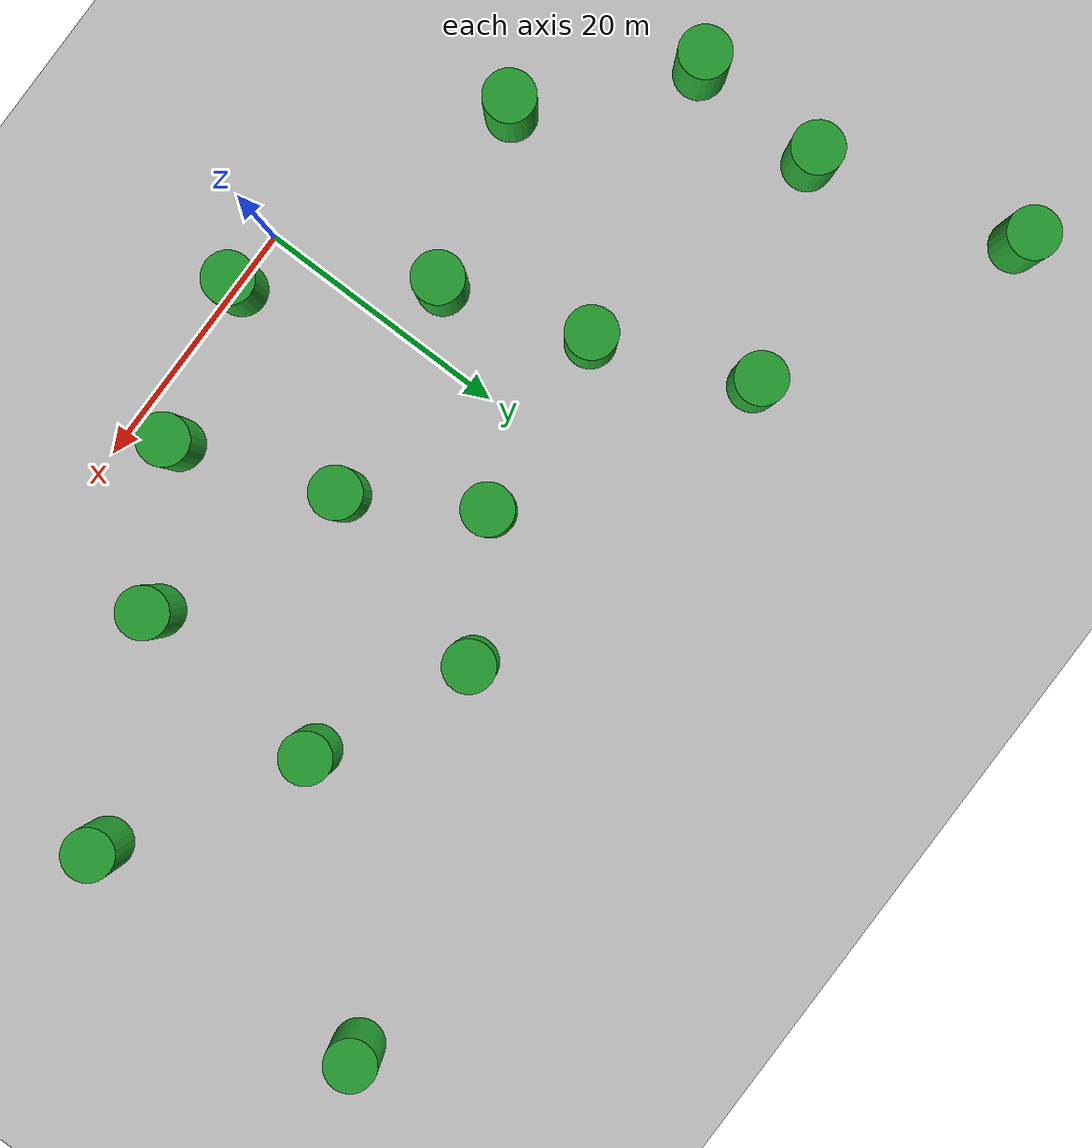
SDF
<sdf version="1.7">
 <world name="default">
  <model name="ground_plane">
   <static>1</static>
   <link name="link">
    <collision name="collision">
     <geometry><plane><normal>0 0 1</normal><size>100 100</size></plane></geometry>
     <surface>
      <contact><collide_bitmask>65535</collide_bitmask></contact>
      <friction><ode><mu>100</mu><mu2>50</mu2></ode></friction>
     </surface>
    </collision>
    <visual name="visual">
     <cast_shadows>0</cast_shadows>
     <geometry><plane><normal>0 0 1</normal><size>100 100</size></plane></geometry>
     <material>
      <script><uri>file://media/materials/scripts/gazebo.material</uri><name>Gazebo/Grey</name></script>
     </material>
    </visual>
   </link>
  </model>
  <model name="unit_cylinder_green_2_clone_1">
   <link name="link">
    <inertial>
     <mass>1</mass>
     <inertia><ixx>0.145833</ixx><ixy>0</ixy><ixz>0</ixz><iyy>0.145833</iyy><iyz>0</iyz><izz>0.125</izz></inertia>
    </inertial>
    <visual name="visual">
     <geometry><cylinder><radius>2</radius><length>10</length></cylinder></geometry>
     <material>
      <script><name>Gazebo/Green</name><uri>file://media/materials/scripts/gazebo.material</uri></script>
      <shader type="pixel"><normal_map>__default__</normal_map></shader>
      <ambient>0 1 0.3 1</ambient>
      <diffuse>0.7 0.7 0.7 1</diffuse>
      <specular>0.01 0.01 0.01 1</specular>
      <emissive>0 0 0 1</emissive>
     </material>
    </visual>
    <collision name="collision">
     <geometry><cylinder><radius>2</radius><length>5</length></cylinder></geometry>
     <surface>
      <friction>
       <ode><mu>1</mu><mu2>1</mu2><fdir1>0 0 0</fdir1><slip1>0</slip1><slip2>0</slip2></ode>
       <torsional>
        <coefficient>1</coefficient>
        <patch_radius>0</patch_radius>
        <surface_radius>0</surface_radius>
        <use_patch_radius>1</use_patch_radius>
        <ode><slip>0</slip></ode>
       </torsional>
      </friction>
      <bounce><restitution_coefficient>0</restitution_coefficient><threshold>1e+06</threshold></bounce>
      <contact>
       <collide_without_contact>0</collide_without_contact>
       <collide_without_contact_bitmask>1</collide_without_contact_bitmask>
       <collide_bitmask>1</collide_bitmask>
       <ode>
        <soft_cfm>0</soft_cfm>
        <soft_erp>0.2</soft_erp>
        <kp>1e+13</kp>
        <kd>1</kd>
        <max_vel>0.01</max_vel>
        <min_depth>0</min_depth>
       </ode>
       <bullet>
        <split_impulse>1</split_impulse>
        <split_impulse_penetration_threshold>-0.01</split_impulse_penetration_threshold>
        <soft_cfm>0</soft_cfm>
        <soft_erp>0.2</soft_erp>
        <kp>1e+13</kp>
        <kd>1</kd>
       </bullet>
      </contact>
     </surface>
    </collision>
   </link>
   <static>0</static>
   <pose>-17.8627 8.62007 2.49999 0 0 -0.000968</pose>
  </model>
  <model name="unit_cylinder_green_2_clone_clone_2">
   <link name="link">
    <inertial>
     <mass>1</mass>
     <inertia><ixx>0.145833</ixx><ixy>0</ixy><ixz>0</ixz><iyy>0.145833</iyy><iyz>0</iyz><izz>0.125</izz></inertia>
    </inertial>
    <visual name="visual">
     <geometry><cylinder><radius>2</radius><length>10</length></cylinder></geometry>
     <material>
      <script><name>Gazebo/Green</name><uri>file://media/materials/scripts/gazebo.material</uri></script>
      <shader type="pixel"><normal_map>__default__</normal_map></shader>
      <ambient>0 1 0.3 1</ambient>
      <diffuse>0.7 0.7 0.7 1</diffuse>
      <specular>0.01 0.01 0.01 1</specular>
      <emissive>0 0 0 1</emissive>
     </material>
    </visual>
    <collision name="collision">
     <geometry><cylinder><radius>2</radius><length>5</length></cylinder></geometry>
     <surface>
      <friction>
       <ode><mu>1</mu><mu2>1</mu2><fdir1>0 0 0</fdir1><slip1>0</slip1><slip2>0</slip2></ode>
       <torsional>
        <coefficient>1</coefficient>
        <patch_radius>0</patch_radius>
        <surface_radius>0</surface_radius>
        <use_patch_radius>1</use_patch_radius>
        <ode><slip>0</slip></ode>
       </torsional>
      </friction>
      <bounce><restitution_coefficient>0</restitution_coefficient><threshold>1e+06</threshold></bounce>
      <contact>
       <collide_without_contact>0</collide_without_contact>
       <collide_without_contact_bitmask>1</collide_without_contact_bitmask>
       <collide_bitmask>1</collide_bitmask>
       <ode>
        <soft_cfm>0</soft_cfm>
        <soft_erp>0.2</soft_erp>
        <kp>1e+13</kp>
        <kd>1</kd>
        <max_vel>0.01</max_vel>
        <min_depth>0</min_depth>
       </ode>
       <bullet>
        <split_impulse>1</split_impulse>
        <split_impulse_penetration_threshold>-0.01</split_impulse_penetration_threshold>
        <soft_cfm>0</soft_cfm>
        <soft_erp>0.2</soft_erp>
        <kp>1e+13</kp>
        <kd>1</kd>
       </bullet>
      </contact>
     </surface>
    </collision>
   </link>
   <static>0</static>
   <pose>-4.45496 12.3058 2.49999 0 0 -0.000967</pose>
  </model>
  <model name="unit_cylinder_green_2_clone_clone_3">
   <link name="link">
    <inertial>
     <mass>1</mass>
     <inertia><ixx>0.145833</ixx><ixy>0</ixy><ixz>0</ixz><iyy>0.145833</iyy><iyz>0</iyz><izz>0.125</izz></inertia>
    </inertial>
    <visual name="visual">
     <geometry><cylinder><radius>2</radius><length>10</length></cylinder></geometry>
     <material>
      <script><name>Gazebo/Green</name><uri>file://media/materials/scripts/gazebo.material</uri></script>
      <shader type="pixel"><normal_map>__default__</normal_map></shader>
      <ambient>0 1 0.3 1</ambient>
      <diffuse>0.7 0.7 0.7 1</diffuse>
      <specular>0.01 0.01 0.01 1</specular>
      <emissive>0 0 0 1</emissive>
     </material>
    </visual>
    <collision name="collision">
     <geometry><cylinder><radius>2</radius><length>5</length></cylinder></geometry>
     <surface>
      <friction>
       <ode><mu>1</mu><mu2>1</mu2><fdir1>0 0 0</fdir1><slip1>0</slip1><slip2>0</slip2></ode>
       <torsional>
        <coefficient>1</coefficient>
        <patch_radius>0</patch_radius>
        <surface_radius>0</surface_radius>
        <use_patch_radius>1</use_patch_radius>
        <ode><slip>0</slip></ode>
       </torsional>
      </friction>
      <bounce><restitution_coefficient>0</restitution_coefficient><threshold>1e+06</threshold></bounce>
      <contact>
       <collide_without_contact>0</collide_without_contact>
       <collide_without_contact_bitmask>1</collide_without_contact_bitmask>
       <collide_bitmask>1</collide_bitmask>
       <ode>
        <soft_cfm>0</soft_cfm>
        <soft_erp>0.2</soft_erp>
        <kp>1e+13</kp>
        <kd>1</kd>
        <max_vel>0.01</max_vel>
        <min_depth>0</min_depth>
       </ode>
       <bullet>
        <split_impulse>1</split_impulse>
        <split_impulse_penetration_threshold>-0.01</split_impulse_penetration_threshold>
        <soft_cfm>0</soft_cfm>
        <soft_erp>0.2</soft_erp>
        <kp>1e+13</kp>
        <kd>1</kd>
       </bullet>
      </contact>
     </surface>
    </collision>
   </link>
   <static>0</static>
   <pose>4.54748 0.366271 2.49999 0 0 -0.000967</pose>
  </model>
  <model name="unit_cylinder_green_2_clone_clone_8">
   <link name="link">
    <inertial>
     <mass>1</mass>
     <inertia><ixx>0.145833</ixx><ixy>0</ixy><ixz>0</ixz><iyy>0.145833</iyy><iyz>0</iyz><izz>0.125</izz></inertia>
    </inertial>
    <visual name="visual">
     <geometry><cylinder><radius>2</radius><length>10</length></cylinder></geometry>
     <material>
      <script><name>Gazebo/Green</name><uri>file://media/materials/scripts/gazebo.material</uri></script>
      <shader type="pixel"><normal_map>__default__</normal_map></shader>
      <ambient>0 1 0.3 1</ambient>
      <diffuse>0.7 0.7 0.7 1</diffuse>
      <specular>0.01 0.01 0.01 1</specular>
      <emissive>0 0 0 1</emissive>
     </material>
    </visual>
    <collision name="collision">
     <geometry><cylinder><radius>2</radius><length>5</length></cylinder></geometry>
     <surface>
      <friction>
       <ode><mu>1</mu><mu2>1</mu2><fdir1>0 0 0</fdir1><slip1>0</slip1><slip2>0</slip2></ode>
       <torsional>
        <coefficient>1</coefficient>
        <patch_radius>0</patch_radius>
        <surface_radius>0</surface_radius>
        <use_patch_radius>1</use_patch_radius>
        <ode><slip>0</slip></ode>
       </torsional>
      </friction>
      <bounce><restitution_coefficient>0</restitution_coefficient><threshold>1e+06</threshold></bounce>
      <contact>
       <collide_without_contact>0</collide_without_contact>
       <collide_without_contact_bitmask>1</collide_without_contact_bitmask>
       <collide_bitmask>1</collide_bitmask>
       <ode>
        <soft_cfm>0</soft_cfm>
        <soft_erp>0.2</soft_erp>
        <kp>1e+13</kp>
        <kd>1</kd>
        <max_vel>0.01</max_vel>
        <min_depth>0</min_depth>
       </ode>
       <bullet>
        <split_impulse>1</split_impulse>
        <split_impulse_penetration_threshold>-0.01</split_impulse_penetration_threshold>
        <soft_cfm>0</soft_cfm>
        <soft_erp>0.2</soft_erp>
        <kp>1e+13</kp>
        <kd>1</kd>
       </bullet>
      </contact>
     </surface>
    </collision>
   </link>
   <static>0</static>
   <pose>-28.7386 17.9151 2.49999 0 0 -0.000967</pose>
  </model>
  <model name="unit_cylinder_green_2_clone_clone_9">
   <link name="link">
    <inertial>
     <mass>1</mass>
     <inertia><ixx>0.145833</ixx><ixy>0</ixy><ixz>0</ixz><iyy>0.145833</iyy><iyz>0</iyz><izz>0.125</izz></inertia>
    </inertial>
    <visual name="visual">
     <geometry><cylinder><radius>2</radius><length>10</length></cylinder></geometry>
     <material>
      <script><name>Gazebo/Green</name><uri>file://media/materials/scripts/gazebo.material</uri></script>
      <shader type="pixel"><normal_map>__default__</normal_map></shader>
      <ambient>0 1 0.3 1</ambient>
      <diffuse>0.7 0.7 0.7 1</diffuse>
      <specular>0.01 0.01 0.01 1</specular>
      <emissive>0 0 0 1</emissive>
     </material>
    </visual>
    <collision name="collision">
     <geometry><cylinder><radius>2</radius><length>5</length></cylinder></geometry>
     <surface>
      <friction>
       <ode><mu>1</mu><mu2>1</mu2><fdir1>0 0 0</fdir1><slip1>0</slip1><slip2>0</slip2></ode>
       <torsional>
        <coefficient>1</coefficient>
        <patch_radius>0</patch_radius>
        <surface_radius>0</surface_radius>
        <use_patch_radius>1</use_patch_radius>
        <ode><slip>0</slip></ode>
       </torsional>
      </friction>
      <bounce><restitution_coefficient>0</restitution_coefficient><threshold>1e+06</threshold></bounce>
      <contact>
       <collide_without_contact>0</collide_without_contact>
       <collide_without_contact_bitmask>1</collide_without_contact_bitmask>
       <collide_bitmask>1</collide_bitmask>
       <ode>
        <soft_cfm>0</soft_cfm>
        <soft_erp>0.2</soft_erp>
        <kp>1e+13</kp>
        <kd>1</kd>
        <max_vel>0.01</max_vel>
        <min_depth>0</min_depth>
       </ode>
       <bullet>
        <split_impulse>1</split_impulse>
        <split_impulse_penetration_threshold>-0.01</split_impulse_penetration_threshold>
        <soft_cfm>0</soft_cfm>
        <soft_erp>0.2</soft_erp>
        <kp>1e+13</kp>
        <kd>1</kd>
       </bullet>
      </contact>
     </surface>
    </collision>
   </link>
   <static>0</static>
   <pose>-12.5558 35.0798 2.49999 0 0 -0.000967</pose>
  </model>
  <model name="unit_cylinder_green_2_clone_clone_10">
   <link name="link">
    <inertial>
     <mass>1</mass>
     <inertia><ixx>0.145833</ixx><ixy>0</ixy><ixz>0</ixz><iyy>0.145833</iyy><iyz>0</iyz><izz>0.125</izz></inertia>
    </inertial>
    <visual name="visual">
     <geometry><cylinder><radius>2</radius><length>10</length></cylinder></geometry>
     <material>
      <script><name>Gazebo/Green</name><uri>file://media/materials/scripts/gazebo.material</uri></script>
      <shader type="pixel"><normal_map>__default__</normal_map></shader>
      <ambient>0 1 0.3 1</ambient>
      <diffuse>0.7 0.7 0.7 1</diffuse>
      <specular>0.01 0.01 0.01 1</specular>
      <emissive>0 0 0 1</emissive>
     </material>
    </visual>
    <collision name="collision">
     <geometry><cylinder><radius>2</radius><length>5</length></cylinder></geometry>
     <surface>
      <friction>
       <ode><mu>1</mu><mu2>1</mu2><fdir1>0 0 0</fdir1><slip1>0</slip1><slip2>0</slip2></ode>
       <torsional>
        <coefficient>1</coefficient>
        <patch_radius>0</patch_radius>
        <surface_radius>0</surface_radius>
        <use_patch_radius>1</use_patch_radius>
        <ode><slip>0</slip></ode>
       </torsional>
      </friction>
      <bounce><restitution_coefficient>0</restitution_coefficient><threshold>1e+06</threshold></bounce>
      <contact>
       <collide_without_contact>0</collide_without_contact>
       <collide_without_contact_bitmask>1</collide_without_contact_bitmask>
       <collide_bitmask>1</collide_bitmask>
       <ode>
        <soft_cfm>0</soft_cfm>
        <soft_erp>0.2</soft_erp>
        <kp>1e+13</kp>
        <kd>1</kd>
        <max_vel>0.01</max_vel>
        <min_depth>0</min_depth>
       </ode>
       <bullet>
        <split_impulse>1</split_impulse>
        <split_impulse_penetration_threshold>-0.01</split_impulse_penetration_threshold>
        <soft_cfm>0</soft_cfm>
        <soft_erp>0.2</soft_erp>
        <kp>1e+13</kp>
        <kd>1</kd>
       </bullet>
      </contact>
     </surface>
    </collision>
   </link>
   <static>0</static>
   <pose>-7.89767 23.435 2.49999 0 0 -0.000967</pose>
  </model>
  <model name="unit_cylinder_green_2_clone_clone_11">
   <link name="link">
    <inertial>
     <mass>1</mass>
     <inertia><ixx>0.145833</ixx><ixy>0</ixy><ixz>0</ixz><iyy>0.145833</iyy><iyz>0</iyz><izz>0.125</izz></inertia>
    </inertial>
    <visual name="visual">
     <geometry><cylinder><radius>2</radius><length>10</length></cylinder></geometry>
     <material>
      <script><name>Gazebo/Green</name><uri>file://media/materials/scripts/gazebo.material</uri></script>
      <shader type="pixel"><normal_map>__default__</normal_map></shader>
      <ambient>0 1 0.3 1</ambient>
      <diffuse>0.7 0.7 0.7 1</diffuse>
      <specular>0.01 0.01 0.01 1</specular>
      <emissive>0 0 0 1</emissive>
     </material>
    </visual>
    <collision name="collision">
     <geometry><cylinder><radius>2</radius><length>5</length></cylinder></geometry>
     <surface>
      <friction>
       <ode><mu>1</mu><mu2>1</mu2><fdir1>0 0 0</fdir1><slip1>0</slip1><slip2>0</slip2></ode>
       <torsional>
        <coefficient>1</coefficient>
        <patch_radius>0</patch_radius>
        <surface_radius>0</surface_radius>
        <use_patch_radius>1</use_patch_radius>
        <ode><slip>0</slip></ode>
       </torsional>
      </friction>
      <bounce><restitution_coefficient>0</restitution_coefficient><threshold>1e+06</threshold></bounce>
      <contact>
       <collide_without_contact>0</collide_without_contact>
       <collide_without_contact_bitmask>1</collide_without_contact_bitmask>
       <collide_bitmask>1</collide_bitmask>
       <ode>
        <soft_cfm>0</soft_cfm>
        <soft_erp>0.2</soft_erp>
        <kp>1e+13</kp>
        <kd>1</kd>
        <max_vel>0.01</max_vel>
        <min_depth>0</min_depth>
       </ode>
       <bullet>
        <split_impulse>1</split_impulse>
        <split_impulse_penetration_threshold>-0.01</split_impulse_penetration_threshold>
        <soft_cfm>0</soft_cfm>
        <soft_erp>0.2</soft_erp>
        <kp>1e+13</kp>
        <kd>1</kd>
       </bullet>
      </contact>
     </surface>
    </collision>
   </link>
   <static>0</static>
   <pose>6.6281 25.0703 2.49999 0 0 -0.000967</pose>
  </model>
  <model name="unit_cylinder_green_2_clone_clone_14">
   <link name="link">
    <inertial>
     <mass>1</mass>
     <inertia><ixx>0.145833</ixx><ixy>0</ixy><ixz>0</ixz><iyy>0.145833</iyy><iyz>0</iyz><izz>0.125</izz></inertia>
    </inertial>
    <visual name="visual">
     <geometry><cylinder><radius>2</radius><length>10</length></cylinder></geometry>
     <material>
      <script><name>Gazebo/Green</name><uri>file://media/materials/scripts/gazebo.material</uri></script>
      <shader type="pixel"><normal_map>__default__</normal_map></shader>
      <ambient>0 1 0.3 1</ambient>
      <diffuse>0.7 0.7 0.7 1</diffuse>
      <specular>0.01 0.01 0.01 1</specular>
      <emissive>0 0 0 1</emissive>
     </material>
    </visual>
    <collision name="collision">
     <geometry><cylinder><radius>2</radius><length>5</length></cylinder></geometry>
     <surface>
      <friction>
       <ode><mu>1</mu><mu2>1</mu2><fdir1>0 0 0</fdir1><slip1>0</slip1><slip2>0</slip2></ode>
       <torsional>
        <coefficient>1</coefficient>
        <patch_radius>0</patch_radius>
        <surface_radius>0</surface_radius>
        <use_patch_radius>1</use_patch_radius>
        <ode><slip>0</slip></ode>
       </torsional>
      </friction>
      <bounce><restitution_coefficient>0</restitution_coefficient><threshold>1e+06</threshold></bounce>
      <contact>
       <collide_without_contact>0</collide_without_contact>
       <collide_without_contact_bitmask>1</collide_without_contact_bitmask>
       <collide_bitmask>1</collide_bitmask>
       <ode>
        <soft_cfm>0</soft_cfm>
        <soft_erp>0.2</soft_erp>
        <kp>1e+13</kp>
        <kd>1</kd>
        <max_vel>0.01</max_vel>
        <min_depth>0</min_depth>
       </ode>
       <bullet>
        <split_impulse>1</split_impulse>
        <split_impulse_penetration_threshold>-0.01</split_impulse_penetration_threshold>
        <soft_cfm>0</soft_cfm>
        <soft_erp>0.2</soft_erp>
        <kp>1e+13</kp>
        <kd>1</kd>
       </bullet>
      </contact>
     </surface>
    </collision>
   </link>
   <static>0</static>
   <pose>-28.1415 28.4335 2.49999 0 0 -0.000967</pose>
  </model>
  <model name="unit_cylinder_green_2_clone_clone_17">
   <link name="link">
    <inertial>
     <mass>1</mass>
     <inertia><ixx>0.145833</ixx><ixy>0</ixy><ixz>0</ixz><iyy>0.145833</iyy><iyz>0</iyz><izz>0.125</izz></inertia>
    </inertial>
    <visual name="visual">
     <geometry><cylinder><radius>2</radius><length>10</length></cylinder></geometry>
     <material>
      <script><name>Gazebo/Green</name><uri>file://media/materials/scripts/gazebo.material</uri></script>
      <shader type="pixel"><normal_map>__default__</normal_map></shader>
      <ambient>0 1 0.3 1</ambient>
      <diffuse>0.7 0.7 0.7 1</diffuse>
      <specular>0.01 0.01 0.01 1</specular>
      <emissive>0 0 0 1</emissive>
     </material>
    </visual>
    <collision name="collision">
     <geometry><cylinder><radius>2</radius><length>5</length></cylinder></geometry>
     <surface>
      <friction>
       <ode><mu>1</mu><mu2>1</mu2><fdir1>0 0 0</fdir1><slip1>0</slip1><slip2>0</slip2></ode>
       <torsional>
        <coefficient>1</coefficient>
        <patch_radius>0</patch_radius>
        <surface_radius>0</surface_radius>
        <use_patch_radius>1</use_patch_radius>
        <ode><slip>0</slip></ode>
       </torsional>
      </friction>
      <bounce><restitution_coefficient>0</restitution_coefficient><threshold>1e+06</threshold></bounce>
      <contact>
       <collide_without_contact>0</collide_without_contact>
       <collide_without_contact_bitmask>1</collide_without_contact_bitmask>
       <collide_bitmask>1</collide_bitmask>
       <ode>
        <soft_cfm>0</soft_cfm>
        <soft_erp>0.2</soft_erp>
        <kp>1e+13</kp>
        <kd>1</kd>
        <max_vel>0.01</max_vel>
        <min_depth>0</min_depth>
       </ode>
       <bullet>
        <split_impulse>1</split_impulse>
        <split_impulse_penetration_threshold>-0.01</split_impulse_penetration_threshold>
        <soft_cfm>0</soft_cfm>
        <soft_erp>0.2</soft_erp>
        <kp>1e+13</kp>
        <kd>1</kd>
       </bullet>
      </contact>
     </surface>
    </collision>
   </link>
   <static>0</static>
   <pose>16.5379 3.56067 2.49999 0 0 -0.000967</pose>
  </model>
  <model name="unit_cylinder_green_2_clone_clone_18">
   <link name="link">
    <inertial>
     <mass>1</mass>
     <inertia><ixx>0.145833</ixx><ixy>0</ixy><ixz>0</ixz><iyy>0.145833</iyy><iyz>0</iyz><izz>0.125</izz></inertia>
    </inertial>
    <visual name="visual">
     <geometry><cylinder><radius>2</radius><length>10</length></cylinder></geometry>
     <material>
      <script><name>Gazebo/Green</name><uri>file://media/materials/scripts/gazebo.material</uri></script>
      <shader type="pixel"><normal_map>__default__</normal_map></shader>
      <ambient>0 1 0.3 1</ambient>
      <diffuse>0.7 0.7 0.7 1</diffuse>
      <specular>0.01 0.01 0.01 1</specular>
      <emissive>0 0 0 1</emissive>
     </material>
    </visual>
    <collision name="collision">
     <geometry><cylinder><radius>2</radius><length>5</length></cylinder></geometry>
     <surface>
      <friction>
       <ode><mu>1</mu><mu2>1</mu2><fdir1>0 0 0</fdir1><slip1>0</slip1><slip2>0</slip2></ode>
       <torsional>
        <coefficient>1</coefficient>
        <patch_radius>0</patch_radius>
        <surface_radius>0</surface_radius>
        <use_patch_radius>1</use_patch_radius>
        <ode><slip>0</slip></ode>
       </torsional>
      </friction>
      <bounce><restitution_coefficient>0</restitution_coefficient><threshold>1e+06</threshold></bounce>
      <contact>
       <collide_without_contact>0</collide_without_contact>
       <collide_without_contact_bitmask>1</collide_without_contact_bitmask>
       <collide_bitmask>1</collide_bitmask>
       <ode>
        <soft_cfm>0</soft_cfm>
        <soft_erp>0.2</soft_erp>
        <kp>1e+13</kp>
        <kd>1</kd>
        <max_vel>0.01</max_vel>
        <min_depth>0</min_depth>
       </ode>
       <bullet>
        <split_impulse>1</split_impulse>
        <split_impulse_penetration_threshold>-0.01</split_impulse_penetration_threshold>
        <soft_cfm>0</soft_cfm>
        <soft_erp>0.2</soft_erp>
        <kp>1e+13</kp>
        <kd>1</kd>
       </bullet>
      </contact>
     </surface>
    </collision>
   </link>
   <static>0</static>
   <pose>12.1932 15.6703 2.49999 0 0 -0.000967</pose>
  </model>
  <model name="unit_cylinder_green_2_clone_clone_19">
   <link name="link">
    <inertial>
     <mass>1</mass>
     <inertia><ixx>0.145833</ixx><ixy>0</ixy><ixz>0</ixz><iyy>0.145833</iyy><iyz>0</iyz><izz>0.125</izz></inertia>
    </inertial>
    <visual name="visual">
     <geometry><cylinder><radius>2</radius><length>10</length></cylinder></geometry>
     <material>
      <script><name>Gazebo/Green</name><uri>file://media/materials/scripts/gazebo.material</uri></script>
      <shader type="pixel"><normal_map>__default__</normal_map></shader>
      <ambient>0 1 0.3 1</ambient>
      <diffuse>0.7 0.7 0.7 1</diffuse>
      <specular>0.01 0.01 0.01 1</specular>
      <emissive>0 0 0 1</emissive>
     </material>
    </visual>
    <collision name="collision">
     <geometry><cylinder><radius>2</radius><length>5</length></cylinder></geometry>
     <surface>
      <friction>
       <ode><mu>1</mu><mu2>1</mu2><fdir1>0 0 0</fdir1><slip1>0</slip1><slip2>0</slip2></ode>
       <torsional>
        <coefficient>1</coefficient>
        <patch_radius>0</patch_radius>
        <surface_radius>0</surface_radius>
        <use_patch_radius>1</use_patch_radius>
        <ode><slip>0</slip></ode>
       </torsional>
      </friction>
      <bounce><restitution_coefficient>0</restitution_coefficient><threshold>1e+06</threshold></bounce>
      <contact>
       <collide_without_contact>0</collide_without_contact>
       <collide_without_contact_bitmask>1</collide_without_contact_bitmask>
       <collide_bitmask>1</collide_bitmask>
       <ode>
        <soft_cfm>0</soft_cfm>
        <soft_erp>0.2</soft_erp>
        <kp>1e+13</kp>
        <kd>1</kd>
        <max_vel>0.01</max_vel>
        <min_depth>0</min_depth>
       </ode>
       <bullet>
        <split_impulse>1</split_impulse>
        <split_impulse_penetration_threshold>-0.01</split_impulse_penetration_threshold>
        <soft_cfm>0</soft_cfm>
        <soft_erp>0.2</soft_erp>
        <kp>1e+13</kp>
        <kd>1</kd>
       </bullet>
      </contact>
     </surface>
    </collision>
   </link>
   <static>0</static>
   <pose>16.3785 30.7272 2.49999 0 0 -0.000967</pose>
  </model>
  <model name="unit_cylinder_green_2_clone_clone_22">
   <link name="link">
    <inertial>
     <mass>1</mass>
     <inertia><ixx>0.145833</ixx><ixy>0</ixy><ixz>0</ixz><iyy>0.145833</iyy><iyz>0</iyz><izz>0.125</izz></inertia>
    </inertial>
    <visual name="visual">
     <geometry><cylinder><radius>2</radius><length>10</length></cylinder></geometry>
     <material>
      <script><name>Gazebo/Green</name><uri>file://media/materials/scripts/gazebo.material</uri></script>
      <shader type="pixel"><normal_map>__default__</normal_map></shader>
      <ambient>0 1 0.3 1</ambient>
      <diffuse>0.7 0.7 0.7 1</diffuse>
      <specular>0.01 0.01 0.01 1</specular>
      <emissive>0 0 0 1</emissive>
     </material>
    </visual>
    <collision name="collision">
     <geometry><cylinder><radius>2</radius><length>5</length></cylinder></geometry>
     <surface>
      <friction>
       <ode><mu>1</mu><mu2>1</mu2><fdir1>0 0 0</fdir1><slip1>0</slip1><slip2>0</slip2></ode>
       <torsional>
        <coefficient>1</coefficient>
        <patch_radius>0</patch_radius>
        <surface_radius>0</surface_radius>
        <use_patch_radius>1</use_patch_radius>
        <ode><slip>0</slip></ode>
       </torsional>
      </friction>
      <bounce><restitution_coefficient>0</restitution_coefficient><threshold>1e+06</threshold></bounce>
      <contact>
       <collide_without_contact>0</collide_without_contact>
       <collide_without_contact_bitmask>1</collide_without_contact_bitmask>
       <collide_bitmask>1</collide_bitmask>
       <ode>
        <soft_cfm>0</soft_cfm>
        <soft_erp>0.2</soft_erp>
        <kp>1e+13</kp>
        <kd>1</kd>
        <max_vel>0.01</max_vel>
        <min_depth>0</min_depth>
       </ode>
       <bullet>
        <split_impulse>1</split_impulse>
        <split_impulse_penetration_threshold>-0.01</split_impulse_penetration_threshold>
        <soft_cfm>0</soft_cfm>
        <soft_erp>0.2</soft_erp>
        <kp>1e+13</kp>
        <kd>1</kd>
       </bullet>
      </contact>
     </surface>
    </collision>
   </link>
   <static>0</static>
   <pose>27.3025 9.80676 2.49999 0 0 -0.000967</pose>
  </model>
  <model name="unit_cylinder_green_2_clone_clone_23">
   <link name="link">
    <inertial>
     <mass>1</mass>
     <inertia><ixx>0.145833</ixx><ixy>0</ixy><ixz>0</ixz><iyy>0.145833</iyy><iyz>0</iyz><izz>0.125</izz></inertia>
    </inertial>
    <visual name="visual">
     <geometry><cylinder><radius>2</radius><length>10</length></cylinder></geometry>
     <material>
      <script><name>Gazebo/Green</name><uri>file://media/materials/scripts/gazebo.material</uri></script>
      <shader type="pixel"><normal_map>__default__</normal_map></shader>
      <ambient>0 1 0.3 1</ambient>
      <diffuse>0.7 0.7 0.7 1</diffuse>
      <specular>0.01 0.01 0.01 1</specular>
      <emissive>0 0 0 1</emissive>
     </material>
    </visual>
    <collision name="collision">
     <geometry><cylinder><radius>2</radius><length>5</length></cylinder></geometry>
     <surface>
      <friction>
       <ode><mu>1</mu><mu2>1</mu2><fdir1>0 0 0</fdir1><slip1>0</slip1><slip2>0</slip2></ode>
       <torsional>
        <coefficient>1</coefficient>
        <patch_radius>0</patch_radius>
        <surface_radius>0</surface_radius>
        <use_patch_radius>1</use_patch_radius>
        <ode><slip>0</slip></ode>
       </torsional>
      </friction>
      <bounce><restitution_coefficient>0</restitution_coefficient><threshold>1e+06</threshold></bounce>
      <contact>
       <collide_without_contact>0</collide_without_contact>
       <collide_without_contact_bitmask>1</collide_without_contact_bitmask>
       <collide_bitmask>1</collide_bitmask>
       <ode>
        <soft_cfm>0</soft_cfm>
        <soft_erp>0.2</soft_erp>
        <kp>1e+13</kp>
        <kd>1</kd>
        <max_vel>0.01</max_vel>
        <min_depth>0</min_depth>
       </ode>
       <bullet>
        <split_impulse>1</split_impulse>
        <split_impulse_penetration_threshold>-0.01</split_impulse_penetration_threshold>
        <soft_cfm>0</soft_cfm>
        <soft_erp>0.2</soft_erp>
        <kp>1e+13</kp>
        <kd>1</kd>
       </bullet>
      </contact>
     </surface>
    </collision>
   </link>
   <static>0</static>
   <pose>28.6231 25.3273 2.49999 0 0 -0.000967</pose>
  </model>
  <model name="unit_cylinder_green_2_clone_clone_29">
   <link name="link">
    <inertial>
     <mass>1</mass>
     <inertia><ixx>0.145833</ixx><ixy>0</ixy><ixz>0</ixz><iyy>0.145833</iyy><iyz>0</iyz><izz>0.125</izz></inertia>
    </inertial>
    <visual name="visual">
     <geometry><cylinder><radius>2</radius><length>10</length></cylinder></geometry>
     <material>
      <script><name>Gazebo/Green</name><uri>file://media/materials/scripts/gazebo.material</uri></script>
      <shader type="pixel"><normal_map>__default__</normal_map></shader>
      <ambient>0 1 0.3 1</ambient>
      <diffuse>0.7 0.7 0.7 1</diffuse>
      <specular>0.01 0.01 0.01 1</specular>
      <emissive>0 0 0 1</emissive>
     </material>
    </visual>
    <collision name="collision">
     <geometry><cylinder><radius>2</radius><length>5</length></cylinder></geometry>
     <surface>
      <friction>
       <ode><mu>1</mu><mu2>1</mu2><fdir1>0 0 0</fdir1><slip1>0</slip1><slip2>0</slip2></ode>
       <torsional>
        <coefficient>1</coefficient>
        <patch_radius>0</patch_radius>
        <surface_radius>0</surface_radius>
        <use_patch_radius>1</use_patch_radius>
        <ode><slip>0</slip></ode>
       </torsional>
      </friction>
      <bounce><restitution_coefficient>0</restitution_coefficient><threshold>1e+06</threshold></bounce>
      <contact>
       <collide_without_contact>0</collide_without_contact>
       <collide_without_contact_bitmask>1</collide_without_contact_bitmask>
       <collide_bitmask>1</collide_bitmask>
       <ode>
        <soft_cfm>0</soft_cfm>
        <soft_erp>0.2</soft_erp>
        <kp>1e+13</kp>
        <kd>1</kd>
        <max_vel>0.01</max_vel>
        <min_depth>0</min_depth>
       </ode>
       <bullet>
        <split_impulse>1</split_impulse>
        <split_impulse_penetration_threshold>-0.01</split_impulse_penetration_threshold>
        <soft_cfm>0</soft_cfm>
        <soft_erp>0.2</soft_erp>
        <kp>1e+13</kp>
        <kd>1</kd>
       </bullet>
      </contact>
     </surface>
    </collision>
   </link>
   <static>0</static>
   <pose>-32.5198 44.3846 2.49999 0 0 -0.000967</pose>
  </model>
  <model name="unit_cylinder_green_2_clone_clone_17_clone_1">
   <link name="link">
    <inertial>
     <mass>1</mass>
     <inertia><ixx>0.145833</ixx><ixy>0</ixy><ixz>0</ixz><iyy>0.145833</iyy><iyz>0</iyz><izz>0.125</izz></inertia>
    </inertial>
    <visual name="visual">
     <geometry><cylinder><radius>2</radius><length>10</length></cylinder></geometry>
     <material>
      <script><name>Gazebo/Green</name><uri>file://media/materials/scripts/gazebo.material</uri></script>
      <shader type="pixel"><normal_map>__default__</normal_map></shader>
      <ambient>0 1 0.3 1</ambient>
      <diffuse>0.7 0.7 0.7 1</diffuse>
      <specular>0.01 0.01 0.01 1</specular>
      <emissive>0 0 0 1</emissive>
     </material>
    </visual>
    <collision name="collision">
     <geometry><cylinder><radius>2</radius><length>5</length></cylinder></geometry>
     <surface>
      <friction>
       <ode><mu>1</mu><mu2>1</mu2><fdir1>0 0 0</fdir1><slip1>0</slip1><slip2>0</slip2></ode>
       <torsional>
        <coefficient>1</coefficient>
        <patch_radius>0</patch_radius>
        <surface_radius>0</surface_radius>
        <use_patch_radius>1</use_patch_radius>
        <ode><slip>0</slip></ode>
       </torsional>
      </friction>
      <bounce><restitution_coefficient>0</restitution_coefficient><threshold>1e+06</threshold></bounce>
      <contact>
       <collide_without_contact>0</collide_without_contact>
       <collide_without_contact_bitmask>1</collide_without_contact_bitmask>
       <collide_bitmask>1</collide_bitmask>
       <ode>
        <soft_cfm>0</soft_cfm>
        <soft_erp>0.2</soft_erp>
        <kp>1e+13</kp>
        <kd>1</kd>
        <max_vel>0.01</max_vel>
        <min_depth>0</min_depth>
       </ode>
       <bullet>
        <split_impulse>1</split_impulse>
        <split_impulse_penetration_threshold>-0.01</split_impulse_penetration_threshold>
        <soft_cfm>0</soft_cfm>
        <soft_erp>0.2</soft_erp>
        <kp>1e+13</kp>
        <kd>1</kd>
       </bullet>
      </contact>
     </surface>
    </collision>
   </link>
   <static>0</static>
   <pose>43.4353 17.0639 2.49999 0 0 -0.000967</pose>
  </model>
  <model name="unit_cylinder_green_2_clone_clone_17_clone_2">
   <link name="link">
    <inertial>
     <mass>1</mass>
     <inertia><ixx>0.145833</ixx><ixy>0</ixy><ixz>0</ixz><iyy>0.145833</iyy><iyz>0</iyz><izz>0.125</izz></inertia>
    </inertial>
    <visual name="visual">
     <geometry><cylinder><radius>2</radius><length>10</length></cylinder></geometry>
     <material>
      <script><name>Gazebo/Green</name><uri>file://media/materials/scripts/gazebo.material</uri></script>
      <shader type="pixel"><normal_map>__default__</normal_map></shader>
      <ambient>0 1 0.3 1</ambient>
      <diffuse>0.7 0.7 0.7 1</diffuse>
      <specular>0.01 0.01 0.01 1</specular>
      <emissive>0 0 0 1</emissive>
     </material>
    </visual>
    <collision name="collision">
     <geometry><cylinder><radius>2</radius><length>5</length></cylinder></geometry>
     <surface>
      <friction>
       <ode><mu>1</mu><mu2>1</mu2><fdir1>0 0 0</fdir1><slip1>0</slip1><slip2>0</slip2></ode>
       <torsional>
        <coefficient>1</coefficient>
        <patch_radius>0</patch_radius>
        <surface_radius>0</surface_radius>
        <use_patch_radius>1</use_patch_radius>
        <ode><slip>0</slip></ode>
       </torsional>
      </friction>
      <bounce><restitution_coefficient>0</restitution_coefficient><threshold>1e+06</threshold></bounce>
      <contact>
       <collide_without_contact>0</collide_without_contact>
       <collide_without_contact_bitmask>1</collide_without_contact_bitmask>
       <collide_bitmask>1</collide_bitmask>
       <ode>
        <soft_cfm>0</soft_cfm>
        <soft_erp>0.2</soft_erp>
        <kp>1e+13</kp>
        <kd>1</kd>
        <max_vel>0.01</max_vel>
        <min_depth>0</min_depth>
       </ode>
       <bullet>
        <split_impulse>1</split_impulse>
        <split_impulse_penetration_threshold>-0.01</split_impulse_penetration_threshold>
        <soft_cfm>0</soft_cfm>
        <soft_erp>0.2</soft_erp>
        <kp>1e+13</kp>
        <kd>1</kd>
       </bullet>
      </contact>
     </surface>
    </collision>
   </link>
   <static>0</static>
   <pose>44.2127 41.023 2.49999 0 0 -0.000967</pose>
  </model>
 </world>
</sdf>
